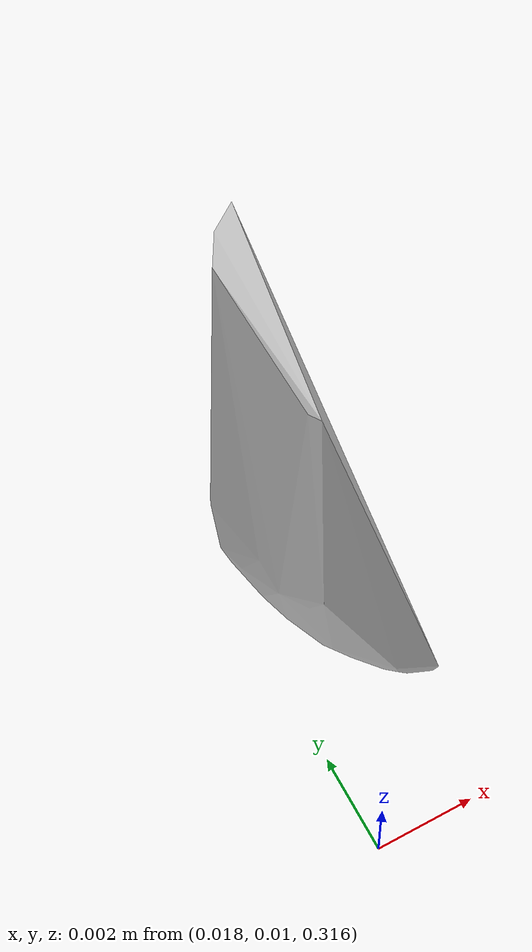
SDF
<?xml version="1.0"?>
<sdf version="1.7">
  <model name="vascular_partexport021">
    <link name="vascular_partexport021_body">
      <visual name="vascular_partexport021_visual">
        <geometry>
          <mesh>
            <uri>vascular_partexport021.obj</uri>
          </mesh>
        </geometry>
      </visual>
      <collision name="vascular_partexport021_collision">
        <geometry>
          <mesh>
            <uri>vascular_partexport021.obj</uri>
          </mesh>
        </geometry>
      </collision>
    </link>
    <frame name="vascular_partexport021_center">
      <pose relative_to="vascular_partexport021_body">0 0 0 0 0 0</pose>
    </frame>
  </model>
</sdf>
